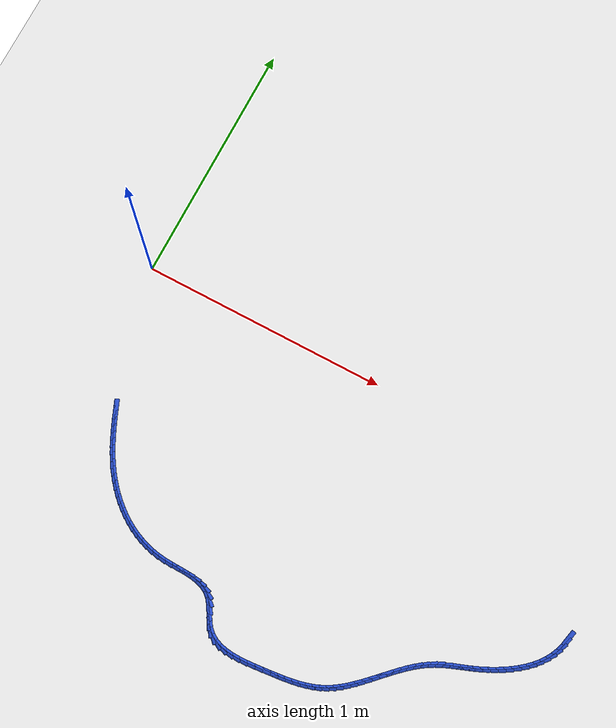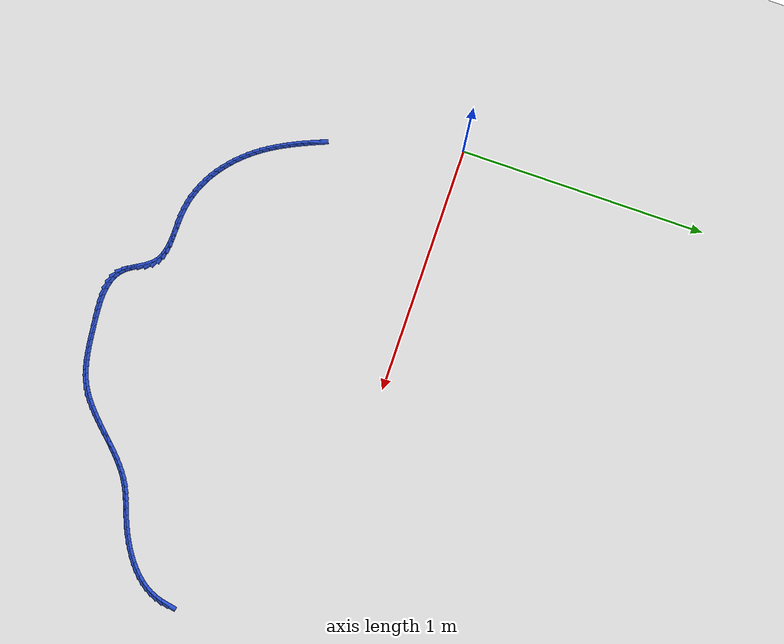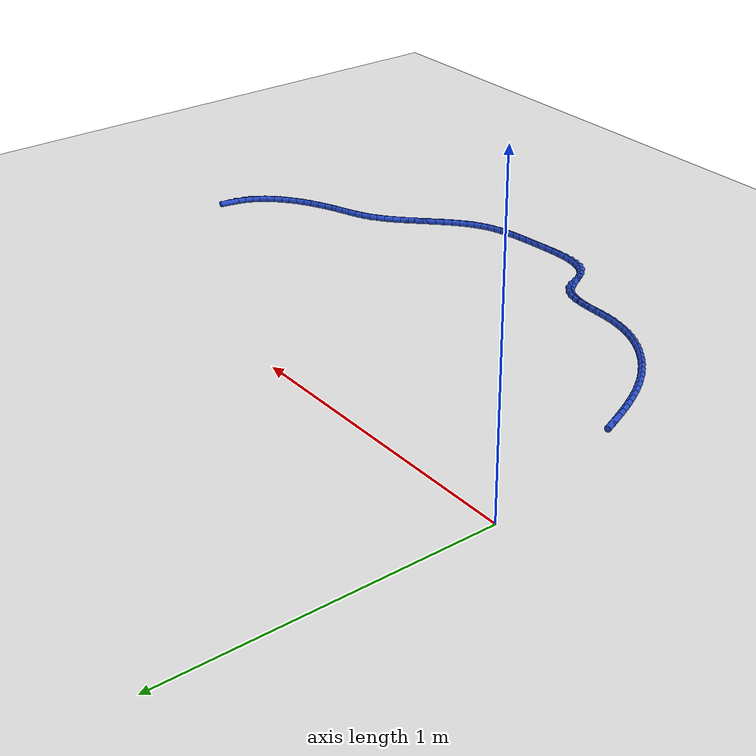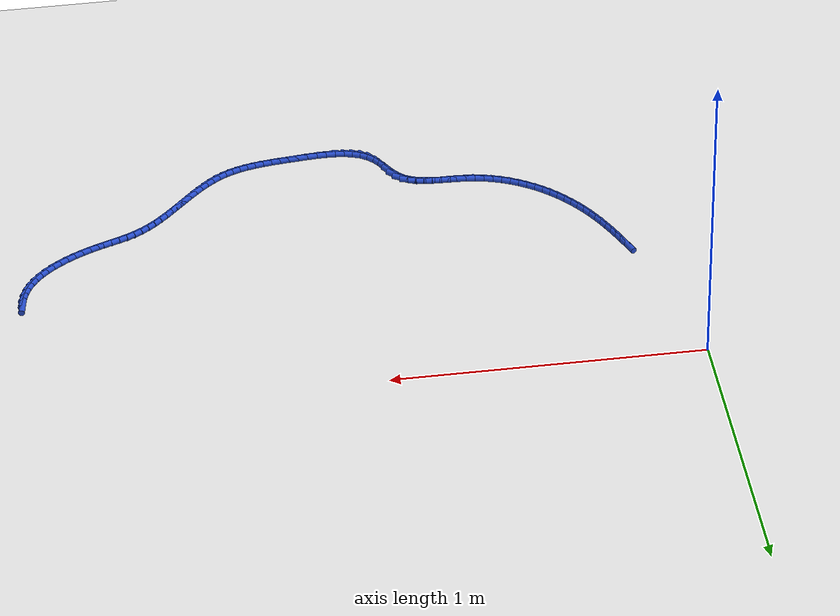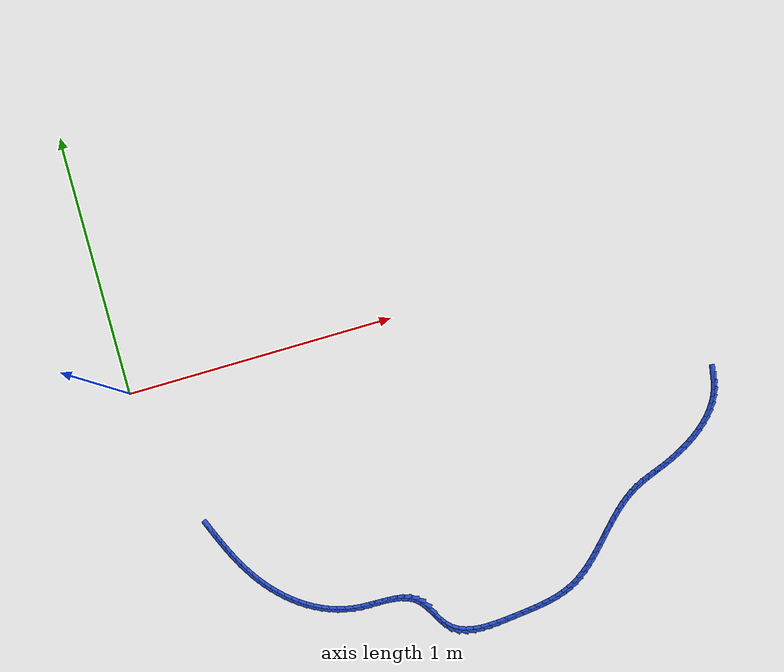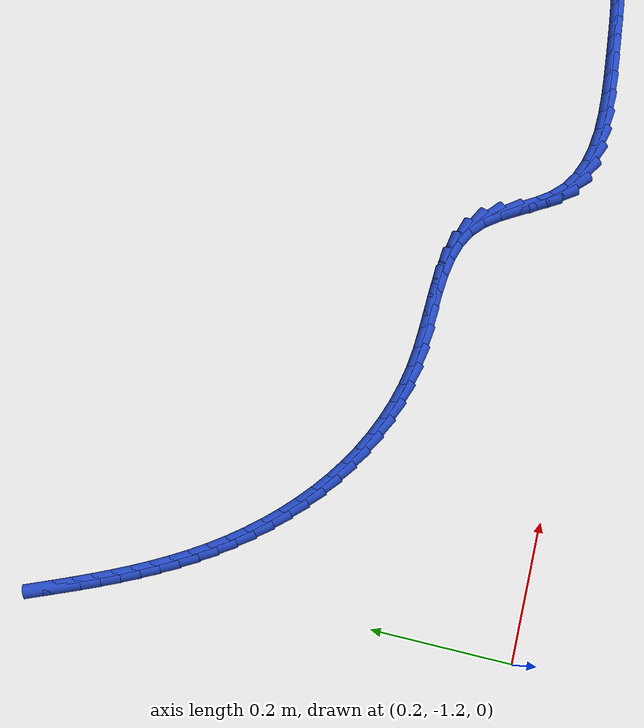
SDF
<sdf version="1.6">
 <world name="default">
  <model name="ground_plane">
   <static>1</static>
   <link name="link">
    <collision name="collision">
     <geometry><plane><normal>0 0 1</normal><size>100 100</size></plane></geometry>
     <surface><friction><ode><mu>100</mu><mu2>50</mu2></ode></friction></surface>
    </collision>
    <visual name="visual">
     <cast_shadows>0</cast_shadows>
     <geometry><plane><normal>0 0 1</normal><size>100 100</size></plane></geometry>
     <material>
      <script><uri>file://media/materials/scripts/gazebo.material</uri><name>Gazebo/WhiteGlow</name></script>
     </material>
    </visual>
   </link>
  </model>
  <model name="line">
   <link name="link_152">
    <pose>2.0808208380928965 -0.5353526110981519 0.01 0 1.57 1.3684338717834268</pose>
    <collision name="collision">
     <geometry><cylinder><radius>0.01</radius><length>0.08</length></cylinder></geometry>
    </collision>
    <visual name="visual">
     <material>
      <script><name>Gazebo/Blue</name><uri>file://media/materials/scripts/gazebo.material</uri></script>
     </material>
     <geometry><cylinder><radius>0.01</radius><length>0.08</length></cylinder></geometry>
    </visual>
   </link>
   <link name="link_153">
    <pose>2.0753890161474184 -0.5618272520758825 0.01 0 1.57 1.2638284004582367</pose>
    <collision name="collision">
     <geometry><cylinder><radius>0.01</radius><length>0.08</length></cylinder></geometry>
    </collision>
    <visual name="visual">
     <material>
      <script><name>Gazebo/Blue</name><uri>file://media/materials/scripts/gazebo.material</uri></script>
     </material>
     <geometry><cylinder><radius>0.01</radius><length>0.08</length></cylinder></geometry>
    </visual>
   </link>
   <link name="link_154">
    <pose>2.067333161190176 -0.5872410422576054 0.01 0 1.57 1.149515429627448</pose>
    <collision name="collision">
     <geometry><cylinder><radius>0.01</radius><length>0.08</length></cylinder></geometry>
    </collision>
    <visual name="visual">
     <material>
      <script><name>Gazebo/Blue</name><uri>file://media/materials/scripts/gazebo.material</uri></script>
     </material>
     <geometry><cylinder><radius>0.01</radius><length>0.08</length></cylinder></geometry>
    </visual>
   </link>
   <link name="link_155">
    <pose>2.0564844697334075 -0.6114509394837309 0.01 0 1.57 1.034584653730187</pose>
    <collision name="collision">
     <geometry><cylinder><radius>0.01</radius><length>0.08</length></cylinder></geometry>
    </collision>
    <visual name="visual">
     <material>
      <script><name>Gazebo/Blue</name><uri>file://media/materials/scripts/gazebo.material</uri></script>
     </material>
     <geometry><cylinder><radius>0.01</radius><length>0.08</length></cylinder></geometry>
    </visual>
   </link>
   <link name="link_156">
    <pose>2.042857094662545 -0.6343813864599916 0.01 0 1.57 0.930152483131089</pose>
    <collision name="collision">
     <geometry><cylinder><radius>0.01</radius><length>0.08</length></cylinder></geometry>
    </collision>
    <visual name="visual">
     <material>
      <script><name>Gazebo/Blue</name><uri>file://media/materials/scripts/gazebo.material</uri></script>
     </material>
     <geometry><cylinder><radius>0.01</radius><length>0.08</length></cylinder></geometry>
    </visual>
   </link>
   <link name="link_157">
    <pose>2.02670553674826 -0.6560454800580412 0.01 0 1.57 0.837177351022539</pose>
    <collision name="collision">
     <geometry><cylinder><radius>0.01</radius><length>0.08</length></cylinder></geometry>
    </collision>
    <visual name="visual">
     <material>
      <script><name>Gazebo/Blue</name><uri>file://media/materials/scripts/gazebo.material</uri></script>
     </material>
     <geometry><cylinder><radius>0.01</radius><length>0.08</length></cylinder></geometry>
    </visual>
   </link>
   <link name="link_158">
    <pose>2.0083006321746586 -0.676462342592413 0.01 0 1.57 0.7551199687673642</pose>
    <collision name="collision">
     <geometry><cylinder><radius>0.01</radius><length>0.08</length></cylinder></geometry>
    </collision>
    <visual name="visual">
     <material>
      <script><name>Gazebo/Blue</name><uri>file://media/materials/scripts/gazebo.material</uri></script>
     </material>
     <geometry><cylinder><radius>0.01</radius><length>0.08</length></cylinder></geometry>
    </visual>
   </link>
   <link name="link_159">
    <pose>1.9879132171258487 -0.6956510963776396 0.01 0 1.57 0.6829773778421195</pose>
    <collision name="collision">
     <geometry><cylinder><radius>0.01</radius><length>0.08</length></cylinder></geometry>
    </collision>
    <visual name="visual">
     <material>
      <script><name>Gazebo/Blue</name><uri>file://media/materials/scripts/gazebo.material</uri></script>
     </material>
     <geometry><cylinder><radius>0.01</radius><length>0.08</length></cylinder></geometry>
    </visual>
   </link>
   <link name="link_160">
    <pose>1.9658141277859371 -0.7136308637282532 0.01 0 1.57 0.6195647464128363</pose>
    <collision name="collision">
     <geometry><cylinder><radius>0.01</radius><length>0.08</length></cylinder></geometry>
    </collision>
    <visual name="visual">
     <material>
      <script><name>Gazebo/Blue</name><uri>file://media/materials/scripts/gazebo.material</uri></script>
     </material>
     <geometry><cylinder><radius>0.01</radius><length>0.08</length></cylinder></geometry>
    </visual>
   </link>
   <link name="link_161">
    <pose>1.9422742003390319 -0.7304207669587868 0.01 0 1.57 0.5636890848945763</pose>
    <collision name="collision">
     <geometry><cylinder><radius>0.01</radius><length>0.08</length></cylinder></geometry>
    </collision>
    <visual name="visual">
     <material>
      <script><name>Gazebo/Blue</name><uri>file://media/materials/scripts/gazebo.material</uri></script>
     </material>
     <geometry><cylinder><radius>0.01</radius><length>0.08</length></cylinder></geometry>
    </visual>
   </link>
   <link name="link_162">
    <pose>1.9175642709692393 -0.7460399283837725 0.01 0 1.57 0.51423927518128</pose>
    <collision name="collision">
     <geometry><cylinder><radius>0.01</radius><length>0.08</length></cylinder></geometry>
    </collision>
    <visual name="visual">
     <material>
      <script><name>Gazebo/Blue</name><uri>file://media/materials/scripts/gazebo.material</uri></script>
     </material>
     <geometry><cylinder><radius>0.01</radius><length>0.08</length></cylinder></geometry>
    </visual>
   </link>
   <link name="link_163">
    <pose>1.8919551758606676 -0.7605074703177434 0.01 0 1.57 0.47022197937689936</pose>
    <collision name="collision">
     <geometry><cylinder><radius>0.01</radius><length>0.08</length></cylinder></geometry>
    </collision>
    <visual name="visual">
     <material>
      <script><name>Gazebo/Blue</name><uri>file://media/materials/scripts/gazebo.material</uri></script>
     </material>
     <geometry><cylinder><radius>0.01</radius><length>0.08</length></cylinder></geometry>
    </visual>
   </link>
   <link name="link_164">
    <pose>1.8657177511974246 -0.7738425150752319 0.01 0 1.57 0.430766501161234</pose>
    <collision name="collision">
     <geometry><cylinder><radius>0.01</radius><length>0.08</length></cylinder></geometry>
    </collision>
    <visual name="visual">
     <material>
      <script><name>Gazebo/Blue</name><uri>file://media/materials/scripts/gazebo.material</uri></script>
     </material>
     <geometry><cylinder><radius>0.01</radius><length>0.08</length></cylinder></geometry>
    </visual>
   </link>
   <link name="link_165">
    <pose>1.8391228331636154 -0.7860641849707709 0.01 0 1.57 0.3951990680188126</pose>
    <collision name="collision">
     <geometry><cylinder><radius>0.01</radius><length>0.08</length></cylinder></geometry>
    </collision>
    <visual name="visual">
     <material>
      <script><name>Gazebo/Blue</name><uri>file://media/materials/scripts/gazebo.material</uri></script>
     </material>
     <geometry><cylinder><radius>0.01</radius><length>0.08</length></cylinder></geometry>
    </visual>
   </link>
   <link name="link_166">
    <pose>1.8124405526131344 -0.7971945787862822 0.01 0 1.57 0.368457137756421</pose>
    <collision name="collision">
     <geometry><cylinder><radius>0.01</radius><length>0.08</length></cylinder></geometry>
    </collision>
    <visual name="visual">
     <material>
      <script><name>Gazebo/Blue</name><uri>file://media/materials/scripts/gazebo.material</uri></script>
     </material>
     <geometry><cylinder><radius>0.01</radius><length>0.08</length></cylinder></geometry>
    </visual>
   </link>
   <link name="link_167">
    <pose>1.7858967091527973 -0.8074428715245939 0.01 0 1.57 0.3596641451032701</pose>
    <collision name="collision">
     <geometry><cylinder><radius>0.01</radius><length>0.08</length></cylinder></geometry>
    </collision>
    <visual name="visual">
     <material>
      <script><name>Gazebo/Blue</name><uri>file://media/materials/scripts/gazebo.material</uri></script>
     </material>
     <geometry><cylinder><radius>0.01</radius><length>0.08</length></cylinder></geometry>
    </visual>
   </link>
   <link name="link_168">
    <pose>1.7596472067275437 -0.8173131952931769 0.01 0 1.57 0.37045410813648305</pose>
    <collision name="collision">
     <geometry><cylinder><radius>0.01</radius><length>0.08</length></cylinder></geometry>
    </collision>
    <visual name="visual">
     <material>
      <script><name>Gazebo/Blue</name><uri>file://media/materials/scripts/gazebo.material</uri></script>
     </material>
     <geometry><cylinder><radius>0.01</radius><length>0.08</length></cylinder></geometry>
    </visual>
   </link>
   <link name="link_169">
    <pose>1.7338417964219188 -0.8273356470424978 0.01 0 1.57 0.40152659588406664</pose>
    <collision name="collision">
     <geometry><cylinder><radius>0.01</radius><length>0.08</length></cylinder></geometry>
    </collision>
    <visual name="visual">
     <material>
      <script><name>Gazebo/Blue</name><uri>file://media/materials/scripts/gazebo.material</uri></script>
     </material>
     <geometry><cylinder><radius>0.01</radius><length>0.08</length></cylinder></geometry>
    </visual>
   </link>
   <link name="link_170">
    <pose>1.708630229320468 -0.8380403237230243 0.01 0 1.57 0.45322982623840846</pose>
    <collision name="collision">
     <geometry><cylinder><radius>0.01</radius><length>0.08</length></cylinder></geometry>
    </collision>
    <visual name="visual">
     <material>
      <script><name>Gazebo/Blue</name><uri>file://media/materials/scripts/gazebo.material</uri></script>
     </material>
     <geometry><cylinder><radius>0.01</radius><length>0.08</length></cylinder></geometry>
    </visual>
   </link>
   <link name="link_171">
    <pose>1.684162256507737 -0.8499573222852227 0.01 0 1.57 0.5242645825254296</pose>
    <collision name="collision">
     <geometry><cylinder><radius>0.01</radius><length>0.08</length></cylinder></geometry>
    </collision>
    <visual name="visual">
     <material>
      <script><name>Gazebo/Blue</name><uri>file://media/materials/scripts/gazebo.material</uri></script>
     </material>
     <geometry><cylinder><radius>0.01</radius><length>0.08</length></cylinder></geometry>
    </visual>
   </link>
   <link name="link_172">
    <pose>1.6605797125477941 -0.8635936536706145 0.01 0 1.57 0.5974849663365023</pose>
    <collision name="collision">
     <geometry><cylinder><radius>0.01</radius><length>0.08</length></cylinder></geometry>
    </collision>
    <visual name="visual">
     <material>
      <script><name>Gazebo/Blue</name><uri>file://media/materials/scripts/gazebo.material</uri></script>
     </material>
     <geometry><cylinder><radius>0.01</radius><length>0.08</length></cylinder></geometry>
    </visual>
   </link>
   <link name="link_173">
    <pose>1.6378812667568288 -0.8790388330025131 0.01 0 1.57 0.6586612663468676</pose>
    <collision name="collision">
     <geometry><cylinder><radius>0.01</radius><length>0.08</length></cylinder></geometry>
    </collision>
    <visual name="visual">
     <material>
      <script><name>Gazebo/Blue</name><uri>file://media/materials/scripts/gazebo.material</uri></script>
     </material>
     <geometry><cylinder><radius>0.01</radius><length>0.08</length></cylinder></geometry>
    </visual>
   </link>
   <link name="link_174">
    <pose>1.6159411933731245 -0.8960196168046571 0.01 0 1.57 0.7076521457457705</pose>
    <collision name="collision">
     <geometry><cylinder><radius>0.01</radius><length>0.08</length></cylinder></geometry>
    </collision>
    <visual name="visual">
     <material>
      <script><name>Gazebo/Blue</name><uri>file://media/materials/scripts/gazebo.material</uri></script>
     </material>
     <geometry><cylinder><radius>0.01</radius><length>0.08</length></cylinder></geometry>
    </visual>
   </link>
   <link name="link_175">
    <pose>1.594629627406494 -0.9142506908601331 0.01 0 1.57 0.7450073725043034</pose>
    <collision name="collision">
     <geometry><cylinder><radius>0.01</radius><length>0.08</length></cylinder></geometry>
    </collision>
    <visual name="visual">
     <material>
      <script><name>Gazebo/Blue</name><uri>file://media/materials/scripts/gazebo.material</uri></script>
     </material>
     <geometry><cylinder><radius>0.01</radius><length>0.08</length></cylinder></geometry>
    </visual>
   </link>
   <link name="link_176">
    <pose>1.5738167038667508 -0.9334467409520285 0.01 0 1.57 0.7713009774440845</pose>
    <collision name="collision">
     <geometry><cylinder><radius>0.01</radius><length>0.08</length></cylinder></geometry>
    </collision>
    <visual name="visual">
     <material>
      <script><name>Gazebo/Blue</name><uri>file://media/materials/scripts/gazebo.material</uri></script>
     </material>
     <geometry><cylinder><radius>0.01</radius><length>0.08</length></cylinder></geometry>
    </visual>
   </link>
   <link name="link_177">
    <pose>1.553372557763708 -0.9533224528634303 0.01 0 1.57 0.7869997775417489</pose>
    <collision name="collision">
     <geometry><cylinder><radius>0.01</radius><length>0.08</length></cylinder></geometry>
    </collision>
    <visual name="visual">
     <material>
      <script><name>Gazebo/Blue</name><uri>file://media/materials/scripts/gazebo.material</uri></script>
     </material>
     <geometry><cylinder><radius>0.01</radius><length>0.08</length></cylinder></geometry>
    </visual>
   </link>
   <link name="link_178">
    <pose>1.5331673241071795 -0.9735925123774253 0.01 0 1.57 0.7923876665901892</pose>
    <collision name="collision">
     <geometry><cylinder><radius>0.01</radius><length>0.08</length></cylinder></geometry>
    </collision>
    <visual name="visual">
     <material>
      <script><name>Gazebo/Blue</name><uri>file://media/materials/scripts/gazebo.material</uri></script>
     </material>
     <geometry><cylinder><radius>0.01</radius><length>0.08</length></cylinder></geometry>
    </visual>
   </link>
   <link name="link_179">
    <pose>1.5130711379069766 -0.9939716052771005 0.01 0 1.57 0.7875263528031973</pose>
    <collision name="collision">
     <geometry><cylinder><radius>0.01</radius><length>0.08</length></cylinder></geometry>
    </collision>
    <visual name="visual">
     <material>
      <script><name>Gazebo/Blue</name><uri>file://media/materials/scripts/gazebo.material</uri></script>
     </material>
     <geometry><cylinder><radius>0.01</radius><length>0.08</length></cylinder></geometry>
    </visual>
   </link>
   <link name="link_180">
    <pose>1.4929541341729142 -1.014174417345543 0.01 0 1.57 0.7722401207851943</pose>
    <collision name="collision">
     <geometry><cylinder><radius>0.01</radius><length>0.08</length></cylinder></geometry>
    </collision>
    <visual name="visual">
     <material>
      <script><name>Gazebo/Blue</name><uri>file://media/materials/scripts/gazebo.material</uri></script>
     </material>
     <geometry><cylinder><radius>0.01</radius><length>0.08</length></cylinder></geometry>
    </visual>
   </link>
   <link name="link_181">
    <pose>1.4726864479148034 -1.0339156343658396 0.01 0 1.57 0.7461207980982723</pose>
    <collision name="collision">
     <geometry><cylinder><radius>0.01</radius><length>0.08</length></cylinder></geometry>
    </collision>
    <visual name="visual">
     <material>
      <script><name>Gazebo/Blue</name><uri>file://media/materials/scripts/gazebo.material</uri></script>
     </material>
     <geometry><cylinder><radius>0.01</radius><length>0.08</length></cylinder></geometry>
    </visual>
   </link>
   <link name="link_182">
    <pose>1.45213821414246 -1.052909942121077 0.01 0 1.57 0.7085583393160537</pose>
    <collision name="collision">
     <geometry><cylinder><radius>0.01</radius><length>0.08</length></cylinder></geometry>
    </collision>
    <visual name="visual">
     <material>
      <script><name>Gazebo/Blue</name><uri>file://media/materials/scripts/gazebo.material</uri></script>
     </material>
     <geometry><cylinder><radius>0.01</radius><length>0.08</length></cylinder></geometry>
    </visual>
   </link>
   <link name="link_183">
    <pose>1.4311795678656947 -1.0708720263943423 0.01 0 1.57 0.6588123904336999</pose>
    <collision name="collision">
     <geometry><cylinder><radius>0.01</radius><length>0.08</length></cylinder></geometry>
    </collision>
    <visual name="visual">
     <material>
      <script><name>Gazebo/Blue</name><uri>file://media/materials/scripts/gazebo.material</uri></script>
     </material>
     <geometry><cylinder><radius>0.01</radius><length>0.08</length></cylinder></geometry>
    </visual>
   </link>
   <link name="link_184">
    <pose>1.4096806440943226 -1.0875165729687226 0.01 0 1.57 0.5961497125726773</pose>
    <collision name="collision">
     <geometry><cylinder><radius>0.01</radius><length>0.08</length></cylinder></geometry>
    </collision>
    <visual name="visual">
     <material>
      <script><name>Gazebo/Blue</name><uri>file://media/materials/scripts/gazebo.material</uri></script>
     </material>
     <geometry><cylinder><radius>0.01</radius><length>0.08</length></cylinder></geometry>
    </visual>
   </link>
   <link name="link_185">
    <pose>1.3875115778381555 -1.102558267627305 0.01 0 1.57 0.5200758742451362</pose>
    <collision name="collision">
     <geometry><cylinder><radius>0.01</radius><length>0.08</length></cylinder></geometry>
    </collision>
    <visual name="visual">
     <material>
      <script><name>Gazebo/Blue</name><uri>file://media/materials/scripts/gazebo.material</uri></script>
     </material>
     <geometry><cylinder><radius>0.01</radius><length>0.08</length></cylinder></geometry>
    </visual>
   </link>
   <link name="link_186">
    <pose>1.3645425042481516 -1.1157117966270778 0.01 0 1.57 0.43436590644987455</pose>
    <collision name="collision">
     <geometry><cylinder><radius>0.01</radius><length>0.08</length></cylinder></geometry>
    </collision>
    <visual name="visual">
     <material>
      <script><name>Gazebo/Blue</name><uri>file://media/materials/scripts/gazebo.material</uri></script>
     </material>
     <geometry><cylinder><radius>0.01</radius><length>0.08</length></cylinder></geometry>
    </visual>
   </link>
   <link name="link_187">
    <pose>1.340671571370385 -1.1267859009981647 0.01 0 1.57 0.3542447506331739</pose>
    <collision name="collision">
     <geometry><cylinder><radius>0.01</radius><length>0.08</length></cylinder></geometry>
    </collision>
    <visual name="visual">
     <material>
      <script><name>Gazebo/Blue</name><uri>file://media/materials/scripts/gazebo.material</uri></script>
     </material>
     <geometry><cylinder><radius>0.01</radius><length>0.08</length></cylinder></geometry>
    </visual>
   </link>
   <link name="link_188">
    <pose>1.31590326820633 -1.1359463671383367 0.01 0 1.57 0.28451908064690196</pose>
    <collision name="collision">
     <geometry><cylinder><radius>0.01</radius><length>0.08</length></cylinder></geometry>
    </collision>
    <visual name="visual">
     <material>
      <script><name>Gazebo/Blue</name><uri>file://media/materials/scripts/gazebo.material</uri></script>
     </material>
     <geometry><cylinder><radius>0.01</radius><length>0.08</length></cylinder></geometry>
    </visual>
   </link>
   <link name="link_189">
    <pose>1.2902673133918252 -1.1434436912736858 0.01 0 1.57 0.22591355041970873</pose>
    <collision name="collision">
     <geometry><cylinder><radius>0.01</radius><length>0.08</length></cylinder></geometry>
    </collision>
    <visual name="visual">
     <material>
      <script><name>Gazebo/Blue</name><uri>file://media/materials/scripts/gazebo.material</uri></script>
     </material>
     <geometry><cylinder><radius>0.01</radius><length>0.08</length></cylinder></geometry>
    </visual>
   </link>
   <link name="link_190">
    <pose>1.2637934255627057 -1.149528369630306 0.01 0 1.57 0.17851009032664472</pose>
    <collision name="collision">
     <geometry><cylinder><radius>0.01</radius><length>0.08</length></cylinder></geometry>
    </collision>
    <visual name="visual">
     <material>
      <script><name>Gazebo/Blue</name><uri>file://media/materials/scripts/gazebo.material</uri></script>
     </material>
     <geometry><cylinder><radius>0.01</radius><length>0.08</length></cylinder></geometry>
    </visual>
   </link>
   <link name="link_191">
    <pose>1.2365113233548075 -1.1544508984342905 0.01 0 1.57 0.14197453801020246</pose>
    <collision name="collision">
     <geometry><cylinder><radius>0.01</radius><length>0.08</length></cylinder></geometry>
    </collision>
    <visual name="visual">
     <material>
      <script><name>Gazebo/Blue</name><uri>file://media/materials/scripts/gazebo.material</uri></script>
     </material>
     <geometry><cylinder><radius>0.01</radius><length>0.08</length></cylinder></geometry>
    </visual>
   </link>
   <link name="link_192">
    <pose>1.208450725403968 -1.1584617739117329 0.01 0 1.57 0.11575206144129915</pose>
    <collision name="collision">
     <geometry><cylinder><radius>0.01</radius><length>0.08</length></cylinder></geometry>
    </collision>
    <visual name="visual">
     <material>
      <script><name>Gazebo/Blue</name><uri>file://media/materials/scripts/gazebo.material</uri></script>
     </material>
     <geometry><cylinder><radius>0.01</radius><length>0.08</length></cylinder></geometry>
    </visual>
   </link>
   <link name="link_193">
    <pose>1.1796413503460226 -1.1618114922887255 0.01 0 1.57 0.09920638663155198</pose>
    <collision name="collision">
     <geometry><cylinder><radius>0.01</radius><length>0.08</length></cylinder></geometry>
    </collision>
    <visual name="visual">
     <material>
      <script><name>Gazebo/Blue</name><uri>file://media/materials/scripts/gazebo.material</uri></script>
     </material>
     <geometry><cylinder><radius>0.01</radius><length>0.08</length></cylinder></geometry>
    </visual>
   </link>
   <link name="link_194">
    <pose>1.1501129168168078 -1.1647505497913624 0.01 0 1.57 0.09169607017445848</pose>
    <collision name="collision">
     <geometry><cylinder><radius>0.01</radius><length>0.08</length></cylinder></geometry>
    </collision>
    <visual name="visual">
     <material>
      <script><name>Gazebo/Blue</name><uri>file://media/materials/scripts/gazebo.material</uri></script>
     </material>
     <geometry><cylinder><radius>0.01</radius><length>0.08</length></cylinder></geometry>
    </visual>
   </link>
   <link name="link_195">
    <pose>1.1198952802371156 -1.167529180416777 0.01 0 1.57 0.0865890465951001</pose>
    <collision name="collision">
     <geometry><cylinder><radius>0.01</radius><length>0.08</length></cylinder></geometry>
    </collision>
    <visual name="visual">
     <material>
      <script><name>Gazebo/Blue</name><uri>file://media/materials/scripts/gazebo.material</uri></script>
     </material>
     <geometry><cylinder><radius>0.01</radius><length>0.08</length></cylinder></geometry>
    </visual>
   </link>
   <link name="link_196">
    <pose>1.0891210818117185 -1.1702005686472559 0.01 0 1.57 0.06687272788807735</pose>
    <collision name="collision">
     <geometry><cylinder><radius>0.01</radius><length>0.08</length></cylinder></geometry>
    </collision>
    <visual name="visual">
     <material>
      <script><name>Gazebo/Blue</name><uri>file://media/materials/scripts/gazebo.material</uri></script>
     </material>
     <geometry><cylinder><radius>0.01</radius><length>0.08</length></cylinder></geometry>
    </visual>
   </link>
   <link name="link_197">
    <pose>1.0582083023089208 -1.172270877573768 0.01 0 1.57 0.02880552259779972</pose>
    <collision name="collision">
     <geometry><cylinder><radius>0.01</radius><length>0.08</length></cylinder></geometry>
    </collision>
    <visual name="visual">
     <material>
      <script><name>Gazebo/Blue</name><uri>file://media/materials/scripts/gazebo.material</uri></script>
     </material>
     <geometry><cylinder><radius>0.01</radius><length>0.08</length></cylinder></geometry>
    </visual>
   </link>
   <link name="link_198">
    <pose>1.0276240350582884 -1.1731521171272392 0.01 0 1.57 -0.030063451602505054</pose>
    <collision name="collision">
     <geometry><cylinder><radius>0.01</radius><length>0.08</length></cylinder></geometry>
    </collision>
    <visual name="visual">
     <material>
      <script><name>Gazebo/Blue</name><uri>file://media/materials/scripts/gazebo.material</uri></script>
     </material>
     <geometry><cylinder><radius>0.01</radius><length>0.08</length></cylinder></geometry>
    </visual>
   </link>
   <link name="link_199">
    <pose>0.9978353733893865 -1.1722562972385968 0.01 0 1.57 -0.11381828417817787</pose>
    <collision name="collision">
     <geometry><cylinder><radius>0.01</radius><length>0.08</length></cylinder></geometry>
    </collision>
    <visual name="visual">
     <material>
      <script><name>Gazebo/Blue</name><uri>file://media/materials/scripts/gazebo.material</uri></script>
     </material>
     <geometry><cylinder><radius>0.01</radius><length>0.08</length></cylinder></geometry>
    </visual>
   </link>
   <link name="link_200">
    <pose>0.9693094106317792 -1.168995427838766 0.01 0 1.57 -0.22786782258673077</pose>
    <collision name="collision">
     <geometry><cylinder><radius>0.01</radius><length>0.08</length></cylinder></geometry>
    </collision>
    <visual name="visual">
     <material>
      <script><name>Gazebo/Blue</name><uri>file://media/materials/scripts/gazebo.material</uri></script>
     </material>
     <geometry><cylinder><radius>0.01</radius><length>0.08</length></cylinder></geometry>
    </visual>
   </link>
   <link name="link_201">
    <pose>0.9425132401150313 -1.1627815188586734 0.01 0 1.57 -0.3775319437747887</pose>
    <collision name="collision">
     <geometry><cylinder><radius>0.01</radius><length>0.08</length></cylinder></geometry>
    </collision>
    <visual name="visual">
     <material>
      <script><name>Gazebo/Blue</name><uri>file://media/materials/scripts/gazebo.material</uri></script>
     </material>
     <geometry><cylinder><radius>0.01</radius><length>0.08</length></cylinder></geometry>
    </visual>
   </link>
   <link name="link_202">
    <pose>0.9179139551687081 -1.153026580229245 0.01 0 1.57 -0.5642959617230253</pose>
    <collision name="collision">
     <geometry><cylinder><radius>0.01</radius><length>0.08</length></cylinder></geometry>
    </collision>
    <visual name="visual">
     <material>
      <script><name>Gazebo/Blue</name><uri>file://media/materials/scripts/gazebo.material</uri></script>
     </material>
     <geometry><cylinder><radius>0.01</radius><length>0.08</length></cylinder></geometry>
    </visual>
   </link>
   <link name="link_203">
    <pose>0.8959786491223742 -1.1391426218814074 0.01 0 1.57 -0.7791523498927534</pose>
    <collision name="collision">
     <geometry><cylinder><radius>0.01</radius><length>0.08</length></cylinder></geometry>
    </collision>
    <visual name="visual">
     <material>
      <script><name>Gazebo/Blue</name><uri>file://media/materials/scripts/gazebo.material</uri></script>
     </material>
     <geometry><cylinder><radius>0.01</radius><length>0.08</length></cylinder></geometry>
    </visual>
   </link>
   <link name="link_204">
    <pose>0.8771621720281402 -1.1205597372631275 0.01 0 1.57 -0.9589512087928487</pose>
    <collision name="collision">
     <geometry><cylinder><radius>0.01</radius><length>0.08</length></cylinder></geometry>
    </collision>
    <visual name="visual">
     <material>
      <script><name>Gazebo/Blue</name><uri>file://media/materials/scripts/gazebo.material</uri></script>
     </material>
     <geometry><cylinder><radius>0.01</radius><length>0.08</length></cylinder></geometry>
    </visual>
   </link>
   <link name="link_205">
    <pose>0.8611861061689075 -1.0977910680706922 0.01 0 1.57 -1.0395829416018683</pose>
    <collision name="collision">
     <geometry><cylinder><radius>0.01</radius><length>0.08</length></cylinder></geometry>
    </collision>
    <visual name="visual">
     <material>
      <script><name>Gazebo/Blue</name><uri>file://media/materials/scripts/gazebo.material</uri></script>
     </material>
     <geometry><cylinder><radius>0.01</radius><length>0.08</length></cylinder></geometry>
    </visual>
   </link>
   <link name="link_206">
    <pose>0.8466362322323651 -1.0730273531617303 0.01 0 1.57 -1.0309427300183165</pose>
    <collision name="collision">
     <geometry><cylinder><radius>0.01</radius><length>0.08</length></cylinder></geometry>
    </collision>
    <visual name="visual">
     <material>
      <script><name>Gazebo/Blue</name><uri>file://media/materials/scripts/gazebo.material</uri></script>
     </material>
     <geometry><cylinder><radius>0.01</radius><length>0.08</length></cylinder></geometry>
    </visual>
   </link>
   <link name="link_207">
    <pose>0.8320007167181641 -1.0486035091142136 0.01 0 1.57 -0.929618121779232</pose>
    <collision name="collision">
     <geometry><cylinder><radius>0.01</radius><length>0.08</length></cylinder></geometry>
    </collision>
    <visual name="visual">
     <material>
      <script><name>Gazebo/Blue</name><uri>file://media/materials/scripts/gazebo.material</uri></script>
     </material>
     <geometry><cylinder><radius>0.01</radius><length>0.08</length></cylinder></geometry>
    </visual>
   </link>
   <link name="link_208">
    <pose>0.8157677261259562 -1.0268544525061145 0.01 0 1.57 -0.720967145212039</pose>
    <collision name="collision">
     <geometry><cylinder><radius>0.01</radius><length>0.08</length></cylinder></geometry>
    </collision>
    <visual name="visual">
     <material>
      <script><name>Gazebo/Blue</name><uri>file://media/materials/scripts/gazebo.material</uri></script>
     </material>
     <geometry><cylinder><radius>0.01</radius><length>0.08</length></cylinder></geometry>
    </visual>
   </link>
   <link name="link_209">
    <pose>0.7965291608656362 -1.0099479770281148 0.01 0 1.57 -0.483960016107151</pose>
    <collision name="collision">
     <geometry><cylinder><radius>0.01</radius><length>0.08</length></cylinder></geometry>
    </collision>
    <visual name="visual">
     <material>
      <script><name>Gazebo/Blue</name><uri>file://media/materials/scripts/gazebo.material</uri></script>
     </material>
     <geometry><cylinder><radius>0.01</radius><length>0.08</length></cylinder></geometry>
    </visual>
   </link>
   <link name="link_210">
    <pose>0.7740641610314756 -0.9981391467389754 0.01 0 1.57 -0.29617222884496025</pose>
    <collision name="collision">
     <geometry><cylinder><radius>0.01</radius><length>0.08</length></cylinder></geometry>
    </collision>
    <visual name="visual">
     <material>
      <script><name>Gazebo/Blue</name><uri>file://media/materials/scripts/gazebo.material</uri></script>
     </material>
     <geometry><cylinder><radius>0.01</radius><length>0.08</length></cylinder></geometry>
    </visual>
   </link>
   <link name="link_211">
    <pose>0.7489090561498899 -0.9904631383546569 0.01 0 1.57 -0.1643741728069617</pose>
    <collision name="collision">
     <geometry><cylinder><radius>0.01</radius><length>0.08</length></cylinder></geometry>
    </collision>
    <visual name="visual">
     <material>
      <script><name>Gazebo/Blue</name><uri>file://media/materials/scripts/gazebo.material</uri></script>
     </material>
     <geometry><cylinder><radius>0.01</radius><length>0.08</length></cylinder></geometry>
    </visual>
   </link>
   <link name="link_212">
    <pose>0.7216124072707987 -0.9859354227155873 0.01 0 1.57 -0.08164510682097656</pose>
    <collision name="collision">
     <geometry><cylinder><radius>0.01</radius><length>0.08</length></cylinder></geometry>
    </collision>
    <visual name="visual">
     <material>
      <script><name>Gazebo/Blue</name><uri>file://media/materials/scripts/gazebo.material</uri></script>
     </material>
     <geometry><cylinder><radius>0.01</radius><length>0.08</length></cylinder></geometry>
    </visual>
   </link>
   <link name="link_213">
    <pose>0.6927227754441206 -0.9835714706621932 0.01 0 1.57 -0.03955694220682323</pose>
    <collision name="collision">
     <geometry><cylinder><radius>0.01</radius><length>0.08</length></cylinder></geometry>
    </collision>
    <visual name="visual">
     <material>
      <script><name>Gazebo/Blue</name><uri>file://media/materials/scripts/gazebo.material</uri></script>
     </material>
     <geometry><cylinder><radius>0.01</radius><length>0.08</length></cylinder></geometry>
    </visual>
   </link>
   <link name="link_214">
    <pose>0.6627887217197768 -0.9823867530349021 0.01 0 1.57 -0.032522709836921536</pose>
    <collision name="collision">
     <geometry><cylinder><radius>0.01</radius><length>0.08</length></cylinder></geometry>
    </collision>
    <visual name="visual">
     <material>
      <script><name>Gazebo/Blue</name><uri>file://media/materials/scripts/gazebo.material</uri></script>
     </material>
     <geometry><cylinder><radius>0.01</radius><length>0.08</length></cylinder></geometry>
    </visual>
   </link>
   <link name="link_215">
    <pose>0.6323588071476858 -0.9813967406741413 0.01 0 1.57 -0.058524252290408564</pose>
    <collision name="collision">
     <geometry><cylinder><radius>0.01</radius><length>0.08</length></cylinder></geometry>
    </collision>
    <visual name="visual">
     <material>
      <script><name>Gazebo/Blue</name><uri>file://media/materials/scripts/gazebo.material</uri></script>
     </material>
     <geometry><cylinder><radius>0.01</radius><length>0.08</length></cylinder></geometry>
    </visual>
   </link>
   <link name="link_216">
    <pose>0.6019815927777673 -0.9796169044203378 0.01 0 1.57 -0.11759422892046144</pose>
    <collision name="collision">
     <geometry><cylinder><radius>0.01</radius><length>0.08</length></cylinder></geometry>
    </collision>
    <visual name="visual">
     <material>
      <script><name>Gazebo/Blue</name><uri>file://media/materials/scripts/gazebo.material</uri></script>
     </material>
     <geometry><cylinder><radius>0.01</radius><length>0.08</length></cylinder></geometry>
    </visual>
   </link>
   <link name="link_217">
    <pose>0.5721890612597313 -0.9760972358745684 0.01 0 1.57 -0.1921892240837607</pose>
    <collision name="collision">
     <geometry><cylinder><radius>0.01</radius><length>0.08</length></cylinder></geometry>
    </collision>
    <visual name="visual">
     <material>
      <script><name>Gazebo/Blue</name><uri>file://media/materials/scripts/gazebo.material</uri></script>
     </material>
     <geometry><cylinder><radius>0.01</radius><length>0.08</length></cylinder></geometry>
    </visual>
   </link>
   <link name="link_218">
    <pose>0.5432367431275317 -0.9704633755062413 0.01 0 1.57 -0.2658353922533874</pose>
    <collision name="collision">
     <geometry><cylinder><radius>0.01</radius><length>0.08</length></cylinder></geometry>
    </collision>
    <visual name="visual">
     <material>
      <script><name>Gazebo/Blue</name><uri>file://media/materials/scripts/gazebo.material</uri></script>
     </material>
     <geometry><cylinder><radius>0.01</radius><length>0.08</length></cylinder></geometry>
    </visual>
   </link>
   <link name="link_219">
    <pose>0.5151518314225437 -0.9628164248563507 0.01 0 1.57 -0.3375157796191174</pose>
    <collision name="collision">
     <geometry><cylinder><radius>0.01</radius><length>0.08</length></cylinder></geometry>
    </collision>
    <visual name="visual">
     <material>
      <script><name>Gazebo/Blue</name><uri>file://media/materials/scripts/gazebo.material</uri></script>
     </material>
     <geometry><cylinder><radius>0.01</radius><length>0.08</length></cylinder></geometry>
    </visual>
   </link>
   <link name="link_220">
    <pose>0.4879546741378413 -0.9532717387274275 0.01 0 1.57 -0.40682891295910767</pose>
    <collision name="collision">
     <geometry><cylinder><radius>0.01</radius><length>0.08</length></cylinder></geometry>
    </collision>
    <visual name="visual">
     <material>
      <script><name>Gazebo/Blue</name><uri>file://media/materials/scripts/gazebo.material</uri></script>
     </material>
     <geometry><cylinder><radius>0.01</radius><length>0.08</length></cylinder></geometry>
    </visual>
   </link>
   <link name="link_221">
    <pose>0.46166561926650057 -0.9419446719220029 0.01 0 1.57 -0.47349705777821877</pose>
    <collision name="collision">
     <geometry><cylinder><radius>0.01</radius><length>0.08</length></cylinder></geometry>
    </collision>
    <visual name="visual">
     <material>
      <script><name>Gazebo/Blue</name><uri>file://media/materials/scripts/gazebo.material</uri></script>
     </material>
     <geometry><cylinder><radius>0.01</radius><length>0.08</length></cylinder></geometry>
    </visual>
   </link>
   <link name="link_222">
    <pose>0.43630501480159506 -0.9289505792426072 0.01 0 1.57 -0.5373621127638654</pose>
    <collision name="collision">
     <geometry><cylinder><radius>0.01</radius><length>0.08</length></cylinder></geometry>
    </collision>
    <visual name="visual">
     <material>
      <script><name>Gazebo/Blue</name><uri>file://media/materials/scripts/gazebo.material</uri></script>
     </material>
     <geometry><cylinder><radius>0.01</radius><length>0.08</length></cylinder></geometry>
    </visual>
   </link>
   <link name="link_223">
    <pose>0.41189320873619995 -0.9144048154917714 0.01 0 1.57 -0.5983737101215536</pose>
    <collision name="collision">
     <geometry><cylinder><radius>0.01</radius><length>0.08</length></cylinder></geometry>
    </collision>
    <visual name="visual">
     <material>
      <script><name>Gazebo/Blue</name><uri>file://media/materials/scripts/gazebo.material</uri></script>
     </material>
     <geometry><cylinder><radius>0.01</radius><length>0.08</length></cylinder></geometry>
    </visual>
   </link>
   <link name="link_224">
    <pose>0.38845054906338927 -0.898422735472026 0.01 0 1.57 -0.6565729491609061</pose>
    <collision name="collision">
     <geometry><cylinder><radius>0.01</radius><length>0.08</length></cylinder></geometry>
    </collision>
    <visual name="visual">
     <material>
      <script><name>Gazebo/Blue</name><uri>file://media/materials/scripts/gazebo.material</uri></script>
     </material>
     <geometry><cylinder><radius>0.01</radius><length>0.08</length></cylinder></geometry>
    </visual>
   </link>
   <link name="link_225">
    <pose>0.36599738377623786 -0.8811196939859018 0.01 0 1.57 -0.7120747816891804</pose>
    <collision name="collision">
     <geometry><cylinder><radius>0.01</radius><length>0.08</length></cylinder></geometry>
    </collision>
    <visual name="visual">
     <material>
      <script><name>Gazebo/Blue</name><uri>file://media/materials/scripts/gazebo.material</uri></script>
     </material>
     <geometry><cylinder><radius>0.01</radius><length>0.08</length></cylinder></geometry>
    </visual>
   </link>
   <link name="link_226">
    <pose>0.34455406086782014 -0.8626110458359293 0.01 0 1.57 -0.7650512800359872</pose>
    <collision name="collision">
     <geometry><cylinder><radius>0.01</radius><length>0.08</length></cylinder></geometry>
    </collision>
    <visual name="visual">
     <material>
      <script><name>Gazebo/Blue</name><uri>file://media/materials/scripts/gazebo.material</uri></script>
     </material>
     <geometry><cylinder><radius>0.01</radius><length>0.08</length></cylinder></geometry>
    </visual>
   </link>
   <link name="link_227">
    <pose>0.3241409283312109 -0.8430121458246397 0.01 0 1.57 -0.8157171709076796</pose>
    <collision name="collision">
     <geometry><cylinder><radius>0.01</radius><length>0.08</length></cylinder></geometry>
    </collision>
    <visual name="visual">
     <material>
      <script><name>Gazebo/Blue</name><uri>file://media/materials/scripts/gazebo.material</uri></script>
     </material>
     <geometry><cylinder><radius>0.01</radius><length>0.08</length></cylinder></geometry>
    </visual>
   </link>
   <link name="link_228">
    <pose>0.30477833415948463 -0.8224383487545636 0.01 0 1.57 -0.8643183055786803</pose>
    <collision name="collision">
     <geometry><cylinder><radius>0.01</radius><length>0.08</length></cylinder></geometry>
    </collision>
    <visual name="visual">
     <material>
      <script><name>Gazebo/Blue</name><uri>file://media/materials/scripts/gazebo.material</uri></script>
     </material>
     <geometry><cylinder><radius>0.01</radius><length>0.08</length></cylinder></geometry>
    </visual>
   </link>
   <link name="link_229">
    <pose>0.28648662634571537 -0.8010050094282306 0.01 0 1.57 -0.9111232347431462</pose>
    <collision name="collision">
     <geometry><cylinder><radius>0.01</radius><length>0.08</length></cylinder></geometry>
    </collision>
    <visual name="visual">
     <material>
      <script><name>Gazebo/Blue</name><uri>file://media/materials/scripts/gazebo.material</uri></script>
     </material>
     <geometry><cylinder><radius>0.01</radius><length>0.08</length></cylinder></geometry>
    </visual>
   </link>
   <link name="link_230">
    <pose>0.26928615288297886 -0.7788274826481735 0.01 0 1.57 -0.9562405026599253</pose>
    <collision name="collision">
     <geometry><cylinder><radius>0.01</radius><length>0.08</length></cylinder></geometry>
    </collision>
    <visual name="visual">
     <material>
      <script><name>Gazebo/Blue</name><uri>file://media/materials/scripts/gazebo.material</uri></script>
     </material>
     <geometry><cylinder><radius>0.01</radius><length>0.08</length></cylinder></geometry>
    </visual>
   </link>
   <link name="link_231">
    <pose>0.2531882615979206 -0.756016950303555 0.01 0 1.57 -0.9982770382189331</pose>
    <collision name="collision">
     <geometry><cylinder><radius>0.01</radius><length>0.08</length></cylinder></geometry>
    </collision>
    <visual name="visual">
     <material>
      <script><name>Gazebo/Blue</name><uri>file://media/materials/scripts/gazebo.material</uri></script>
     </material>
     <geometry><cylinder><radius>0.01</radius><length>0.08</length></cylinder></geometry>
    </visual>
   </link>
   <link name="link_232">
    <pose>0.23812670090893642 -0.7326486154368677 0.01 0 1.57 -1.0362646700661546</pose>
    <collision name="collision">
     <geometry><cylinder><radius>0.01</radius><length>0.08</length></cylinder></geometry>
    </collision>
    <visual name="visual">
     <material>
      <script><name>Gazebo/Blue</name><uri>file://media/materials/scripts/gazebo.material</uri></script>
     </material>
     <geometry><cylinder><radius>0.01</radius><length>0.08</length></cylinder></geometry>
    </visual>
   </link>
   <link name="link_233">
    <pose>0.22399557337676998 -0.708779299349484 0.01 0 1.57 -1.0700263871281017</pose>
    <collision name="collision">
     <geometry><cylinder><radius>0.01</radius><length>0.08</length></cylinder></geometry>
    </collision>
    <visual name="visual">
     <material>
      <script><name>Gazebo/Blue</name><uri>file://media/materials/scripts/gazebo.material</uri></script>
     </material>
     <geometry><cylinder><radius>0.01</radius><length>0.08</length></cylinder></geometry>
    </visual>
   </link>
   <link name="link_234">
    <pose>0.21068866303752237 -0.6844656756593134 0.01 0 1.57 -1.0994613455170295</pose>
    <collision name="collision">
     <geometry><cylinder><radius>0.01</radius><length>0.08</length></cylinder></geometry>
    </collision>
    <visual name="visual">
     <material>
      <script><name>Gazebo/Blue</name><uri>file://media/materials/scripts/gazebo.material</uri></script>
     </material>
     <geometry><cylinder><radius>0.01</radius><length>0.08</length></cylinder></geometry>
    </visual>
   </link>
   <link name="link_235">
    <pose>0.19809975392729454 -0.659764417984265 0.01 0 1.57 -1.1245219414307848</pose>
    <collision name="collision">
     <geometry><cylinder><radius>0.01</radius><length>0.08</length></cylinder></geometry>
    </collision>
    <visual name="visual">
     <material>
      <script><name>Gazebo/Blue</name><uri>file://media/materials/scripts/gazebo.material</uri></script>
     </material>
     <geometry><cylinder><radius>0.01</radius><length>0.08</length></cylinder></geometry>
    </visual>
   </link>
   <link name="link_236">
    <pose>0.18612263008218705 -0.6347321999422476 0.01 0 1.57 -1.1451977096838892</pose>
    <collision name="collision">
     <geometry><cylinder><radius>0.01</radius><length>0.08</length></cylinder></geometry>
    </collision>
    <visual name="visual">
     <material>
      <script><name>Gazebo/Blue</name><uri>file://media/materials/scripts/gazebo.material</uri></script>
     </material>
     <geometry><cylinder><radius>0.01</radius><length>0.08</length></cylinder></geometry>
    </visual>
   </link>
   <link name="link_237">
    <pose>0.1746510755383017 -0.6094256951511725 0.01 0 1.57 -1.1615009878337814</pose>
    <collision name="collision">
     <geometry><cylinder><radius>0.01</radius><length>0.08</length></cylinder></geometry>
    </collision>
    <visual name="visual">
     <material>
      <script><name>Gazebo/Blue</name><uri>file://media/materials/scripts/gazebo.material</uri></script>
     </material>
     <geometry><cylinder><radius>0.01</radius><length>0.08</length></cylinder></geometry>
    </visual>
   </link>
   <link name="link_238">
    <pose>0.1635788743317391 -0.583901577228948 0.01 0 1.57 -1.173454983418319</pose>
    <collision name="collision">
     <geometry><cylinder><radius>0.01</radius><length>0.08</length></cylinder></geometry>
    </collision>
    <visual name="visual">
     <material>
      <script><name>Gazebo/Blue</name><uri>file://media/materials/scripts/gazebo.material</uri></script>
     </material>
     <geometry><cylinder><radius>0.01</radius><length>0.08</length></cylinder></geometry>
    </visual>
   </link>
   <link name="link_239">
    <pose>0.15279981049860017 -0.5582165197934837 0.01 0 1.57 -1.181084473639051</pose>
    <collision name="collision">
     <geometry><cylinder><radius>0.01</radius><length>0.08</length></cylinder></geometry>
    </collision>
    <visual name="visual">
     <material>
      <script><name>Gazebo/Blue</name><uri>file://media/materials/scripts/gazebo.material</uri></script>
     </material>
     <geometry><cylinder><radius>0.01</radius><length>0.08</length></cylinder></geometry>
    </visual>
   </link>
  </model>
 </world>
</sdf>
